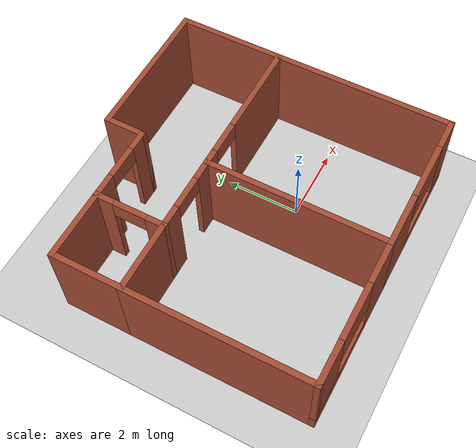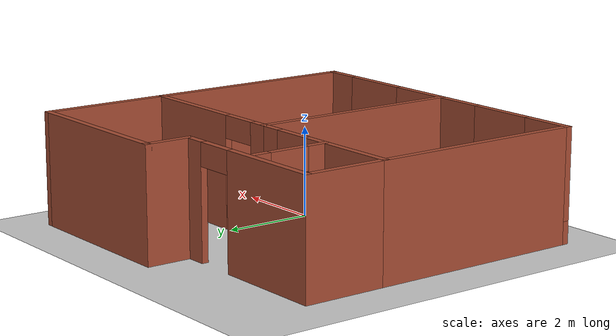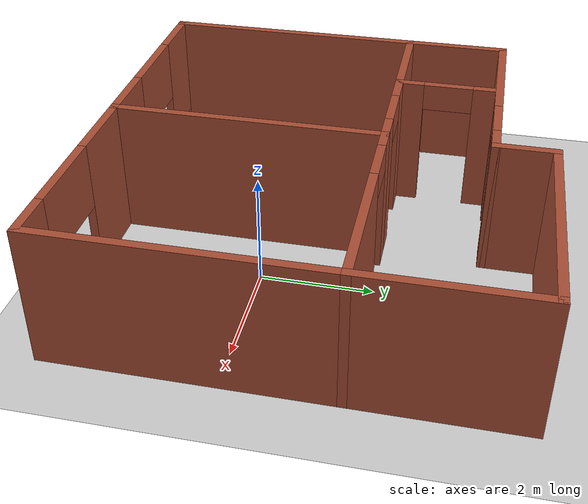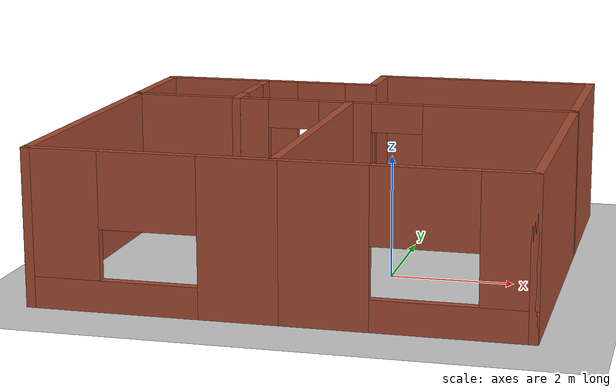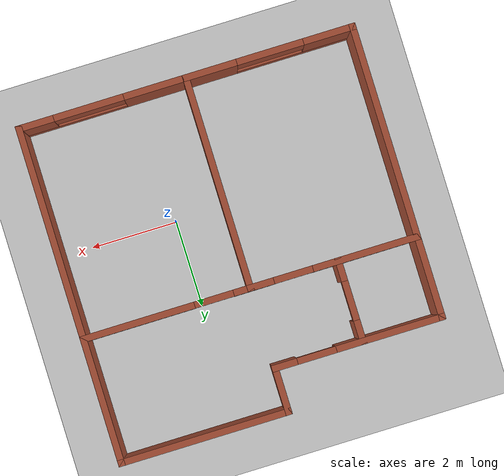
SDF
<sdf version="1.6">
 <world name="default">
  <model name="ground_plane">
   <static>1</static>
   <link name="link">
    <collision name="collision">
     <geometry><plane><normal>0 0 1</normal><size>100 100</size></plane></geometry>
     <surface><friction><ode><mu>100</mu><mu2>50</mu2></ode></friction></surface>
    </collision>
    <visual name="visual">
     <cast_shadows>0</cast_shadows>
     <geometry><plane><normal>0 0 1</normal><size>100 100</size></plane></geometry>
     <material>
      <script><uri>file://media/materials/scripts/gazebo.material</uri><name>Gazebo/Grey</name></script>
     </material>
    </visual>
   </link>
  </model>
  <light name="sun" type="directional">
   <pose>0 0 10 0 -0 0</pose>
   <diffuse>0.8 0.8 0.8 1</diffuse>
   <specular>0.2 0.2 0.2 1</specular>
   <attenuation>
    <range>1000</range>
    <constant>0.9</constant>
    <linear>0.01</linear>
    <quadratic>0.001</quadratic>
   </attenuation>
   <direction>-0.5 0.1 -0.9</direction>
  </light>
  <gravity>0 0 -9.8</gravity>
  <magnetic_field>6e-06 2.3e-05 -4.2e-05</magnetic_field>
  <atmosphere type="adiabatic"/>
  <physics name="default_physics" default="0" type="ode">
   <max_step_size>0.001</max_step_size>
   <real_time_factor>1</real_time_factor>
   <real_time_update_rate>1000</real_time_update_rate>
  </physics>
  <scene><ambient>0.4 0.4 0.4 1</ambient><background>0.7 0.7 0.7 1</background><shadows>1</shadows></scene>
  <spherical_coordinates>
   <surface_model>EARTH_WGS84</surface_model>
   <latitude_deg>0</latitude_deg>
   <longitude_deg>0</longitude_deg>
   <elevation>0</elevation>
   <heading_deg>0</heading_deg>
  </spherical_coordinates>
  <model name="apartment">
   <link name="Wall_12">
    <pose>3.85 2.425 0 0 0 -1.5708</pose>
    <visual name="Wall_12_Visual">
     <pose>0 0 1.25 0 -0 0</pose>
     <geometry><box><size>3 0.15 2.5</size></box></geometry>
     <material>
      <script><uri>file://media/materials/scripts/gazebo.material</uri><name>Gazebo/Bricks</name></script>
      <ambient>1 1 1 1</ambient>
      <shader type="pixel"/>
      <diffuse>1 1 1 1</diffuse>
      <specular>0.2 0.2 0.2 1</specular>
      <emissive>0 0 0 1</emissive>
     </material>
     <meta><layer>0</layer></meta>
    </visual>
    <collision name="Wall_12_Collision">
     <pose>0 0 1.25 0 -0 0</pose>
     <geometry><box><size>3 0.15 2.5</size></box></geometry>
     <surface>
      <friction>
       <ode><mu>1</mu><mu2>1</mu2><fdir1>0 0 0</fdir1><slip1>0</slip1><slip2>0</slip2></ode>
       <torsional>
        <coefficient>1</coefficient>
        <patch_radius>0</patch_radius>
        <surface_radius>0</surface_radius>
        <use_patch_radius>1</use_patch_radius>
        <ode><slip>0</slip></ode>
       </torsional>
      </friction>
      <bounce><restitution_coefficient>0</restitution_coefficient><threshold>1e+06</threshold></bounce>
      <contact>
       <collide_without_contact>0</collide_without_contact>
       <collide_without_contact_bitmask>1</collide_without_contact_bitmask>
       <collide_bitmask>1</collide_bitmask>
       <ode>
        <soft_cfm>0</soft_cfm>
        <soft_erp>0.2</soft_erp>
        <kp>1e+13</kp>
        <kd>1</kd>
        <max_vel>0.01</max_vel>
        <min_depth>0</min_depth>
       </ode>
       <bullet>
        <split_impulse>1</split_impulse>
        <split_impulse_penetration_threshold>-0.01</split_impulse_penetration_threshold>
        <soft_cfm>0</soft_cfm>
        <soft_erp>0.2</soft_erp>
        <kp>1e+13</kp>
        <kd>1</kd>
       </bullet>
      </contact>
     </surface>
    </collision>
   </link>
   <link name="Wall_14">
    <pose>1.925 1 0 0 -0 3.14159</pose>
    <visual name="Wall_14_Visual_0">
     <pose>-0.681236 0 1.25 0 -0 0</pose>
     <geometry><box><size>2.63753 0.15 2.5</size></box></geometry>
     <material>
      <script><uri>file://media/materials/scripts/gazebo.material</uri><name>Gazebo/Bricks</name></script>
      <ambient>0.760784 0.662745 0.627451 1</ambient>
      <shader type="pixel"/>
      <diffuse>1 1 1 1</diffuse>
      <specular>0.2 0.2 0.2 1</specular>
      <emissive>0 0 0 1</emissive>
     </material>
     <meta><layer>0</layer></meta>
    </visual>
    <visual name="Wall_14_Visual_1">
     <pose>1.76876 0 1.25 0 -0 0</pose>
     <geometry><box><size>0.462473 0.15 2.5</size></box></geometry>
     <material>
      <script><uri>file://media/materials/scripts/gazebo.material</uri><name>Gazebo/Bricks</name></script>
      <ambient>0.760784 0.662745 0.627451 1</ambient>
      <shader type="pixel"/>
      <diffuse>1 1 1 1</diffuse>
      <specular>0.2 0.2 0.2 1</specular>
      <emissive>0 0 0 1</emissive>
     </material>
     <meta><layer>0</layer></meta>
    </visual>
    <visual name="Wall_14_Visual_2">
     <pose>1.08753 0 2.25 0 -0 0</pose>
     <geometry><box><size>0.9 0.15 0.5</size></box></geometry>
     <material>
      <script><uri>file://media/materials/scripts/gazebo.material</uri><name>Gazebo/Bricks</name></script>
      <ambient>0.760784 0.662745 0.627451 1</ambient>
      <shader type="pixel"/>
      <diffuse>1 1 1 1</diffuse>
      <specular>0.2 0.2 0.2 1</specular>
      <emissive>0 0 0 1</emissive>
     </material>
     <meta><layer>0</layer></meta>
    </visual>
    <collision name="Wall_14_Collision_0">
     <pose>-0.681236 0 1.25 0 -0 0</pose>
     <geometry><box><size>2.63753 0.15 2.5</size></box></geometry>
     <surface>
      <friction>
       <ode><mu>1</mu><mu2>1</mu2><fdir1>0 0 0</fdir1><slip1>0</slip1><slip2>0</slip2></ode>
       <torsional>
        <coefficient>1</coefficient>
        <patch_radius>0</patch_radius>
        <surface_radius>0</surface_radius>
        <use_patch_radius>1</use_patch_radius>
        <ode><slip>0</slip></ode>
       </torsional>
      </friction>
      <bounce><restitution_coefficient>0</restitution_coefficient><threshold>1e+06</threshold></bounce>
      <contact>
       <collide_without_contact>0</collide_without_contact>
       <collide_without_contact_bitmask>1</collide_without_contact_bitmask>
       <collide_bitmask>1</collide_bitmask>
       <ode>
        <soft_cfm>0</soft_cfm>
        <soft_erp>0.2</soft_erp>
        <kp>1e+13</kp>
        <kd>1</kd>
        <max_vel>0.01</max_vel>
        <min_depth>0</min_depth>
       </ode>
       <bullet>
        <split_impulse>1</split_impulse>
        <split_impulse_penetration_threshold>-0.01</split_impulse_penetration_threshold>
        <soft_cfm>0</soft_cfm>
        <soft_erp>0.2</soft_erp>
        <kp>1e+13</kp>
        <kd>1</kd>
       </bullet>
      </contact>
     </surface>
    </collision>
    <collision name="Wall_14_Collision_1">
     <pose>1.76876 0 1.25 0 -0 0</pose>
     <geometry><box><size>0.462473 0.15 2.5</size></box></geometry>
     <surface>
      <friction>
       <ode><mu>1</mu><mu2>1</mu2><fdir1>0 0 0</fdir1><slip1>0</slip1><slip2>0</slip2></ode>
       <torsional>
        <coefficient>1</coefficient>
        <patch_radius>0</patch_radius>
        <surface_radius>0</surface_radius>
        <use_patch_radius>1</use_patch_radius>
        <ode><slip>0</slip></ode>
       </torsional>
      </friction>
      <bounce><restitution_coefficient>0</restitution_coefficient><threshold>1e+06</threshold></bounce>
      <contact>
       <collide_without_contact>0</collide_without_contact>
       <collide_without_contact_bitmask>1</collide_without_contact_bitmask>
       <collide_bitmask>1</collide_bitmask>
       <ode>
        <soft_cfm>0</soft_cfm>
        <soft_erp>0.2</soft_erp>
        <kp>1e+13</kp>
        <kd>1</kd>
        <max_vel>0.01</max_vel>
        <min_depth>0</min_depth>
       </ode>
       <bullet>
        <split_impulse>1</split_impulse>
        <split_impulse_penetration_threshold>-0.01</split_impulse_penetration_threshold>
        <soft_cfm>0</soft_cfm>
        <soft_erp>0.2</soft_erp>
        <kp>1e+13</kp>
        <kd>1</kd>
       </bullet>
      </contact>
     </surface>
    </collision>
    <collision name="Wall_14_Collision_2">
     <pose>1.08753 0 2.25 0 -0 0</pose>
     <geometry><box><size>0.9 0.15 0.5</size></box></geometry>
     <surface>
      <friction>
       <ode><mu>1</mu><mu2>1</mu2><fdir1>0 0 0</fdir1><slip1>0</slip1><slip2>0</slip2></ode>
       <torsional>
        <coefficient>1</coefficient>
        <patch_radius>0</patch_radius>
        <surface_radius>0</surface_radius>
        <use_patch_radius>1</use_patch_radius>
        <ode><slip>0</slip></ode>
       </torsional>
      </friction>
      <bounce><restitution_coefficient>0</restitution_coefficient><threshold>1e+06</threshold></bounce>
      <contact>
       <collide_without_contact>0</collide_without_contact>
       <collide_without_contact_bitmask>1</collide_without_contact_bitmask>
       <collide_bitmask>1</collide_bitmask>
       <ode>
        <soft_cfm>0</soft_cfm>
        <soft_erp>0.2</soft_erp>
        <kp>1e+13</kp>
        <kd>1</kd>
        <max_vel>0.01</max_vel>
        <min_depth>0</min_depth>
       </ode>
       <bullet>
        <split_impulse>1</split_impulse>
        <split_impulse_penetration_threshold>-0.01</split_impulse_penetration_threshold>
        <soft_cfm>0</soft_cfm>
        <soft_erp>0.2</soft_erp>
        <kp>1e+13</kp>
        <kd>1</kd>
       </bullet>
      </contact>
     </surface>
    </collision>
   </link>
   <link name="Wall_18">
    <pose>0 -1.425 0 0 0 -1.5708</pose>
    <visual name="Wall_18_Visual">
     <pose>0 0 1.25 0 -0 0</pose>
     <geometry><box><size>5 0.15 2.5</size></box></geometry>
     <material>
      <script><uri>file://media/materials/scripts/gazebo.material</uri><name>Gazebo/Bricks</name></script>
      <ambient>1 1 1 1</ambient>
      <shader type="pixel"/>
      <diffuse>1 1 1 1</diffuse>
      <specular>0.2 0.2 0.2 1</specular>
      <emissive>0 0 0 1</emissive>
     </material>
     <meta><layer>0</layer></meta>
    </visual>
    <collision name="Wall_18_Collision">
     <pose>0 0 1.25 0 -0 0</pose>
     <geometry><box><size>5 0.15 2.5</size></box></geometry>
     <surface>
      <friction>
       <ode><mu>1</mu><mu2>1</mu2><fdir1>0 0 0</fdir1><slip1>0</slip1><slip2>0</slip2></ode>
       <torsional>
        <coefficient>1</coefficient>
        <patch_radius>0</patch_radius>
        <surface_radius>0</surface_radius>
        <use_patch_radius>1</use_patch_radius>
        <ode><slip>0</slip></ode>
       </torsional>
      </friction>
      <bounce><restitution_coefficient>0</restitution_coefficient><threshold>1e+06</threshold></bounce>
      <contact>
       <collide_without_contact>0</collide_without_contact>
       <collide_without_contact_bitmask>1</collide_without_contact_bitmask>
       <collide_bitmask>1</collide_bitmask>
       <ode>
        <soft_cfm>0</soft_cfm>
        <soft_erp>0.2</soft_erp>
        <kp>1e+13</kp>
        <kd>1</kd>
        <max_vel>0.01</max_vel>
        <min_depth>0</min_depth>
       </ode>
       <bullet>
        <split_impulse>1</split_impulse>
        <split_impulse_penetration_threshold>-0.01</split_impulse_penetration_threshold>
        <soft_cfm>0</soft_cfm>
        <soft_erp>0.2</soft_erp>
        <kp>1e+13</kp>
        <kd>1</kd>
       </bullet>
      </contact>
     </surface>
    </collision>
   </link>
   <link name="Wall_19">
    <pose>1.925 -3.85 0 0 -0 0</pose>
    <visual name="Wall_19_Visual_0">
     <pose>-1.24293 0 1.25 0 -0 0</pose>
     <geometry><box><size>1.51415 0.15 2.5</size></box></geometry>
     <material>
      <script><uri>file://media/materials/scripts/gazebo.material</uri><name>Gazebo/Bricks</name></script>
      <ambient>1 1 1 1</ambient>
      <shader type="pixel"/>
      <diffuse>1 1 1 1</diffuse>
      <specular>0.2 0.2 0.2 1</specular>
      <emissive>0 0 0 1</emissive>
     </material>
     <meta><layer>0</layer></meta>
    </visual>
    <visual name="Wall_19_Visual_1">
     <pose>0.757074 0 0.25 0 -0 0</pose>
     <geometry><box><size>2.48585 0.15 0.5</size></box></geometry>
     <material>
      <script><uri>file://media/materials/scripts/gazebo.material</uri><name>Gazebo/Bricks</name></script>
      <ambient>1 1 1 1</ambient>
      <shader type="pixel"/>
      <diffuse>1 1 1 1</diffuse>
      <specular>0.2 0.2 0.2 1</specular>
      <emissive>0 0 0 1</emissive>
     </material>
     <meta><layer>0</layer></meta>
    </visual>
    <visual name="Wall_19_Visual_2">
     <pose>1.56451 0 1.5 0 -0 0</pose>
     <geometry><box><size>0.870975 0.15 2</size></box></geometry>
     <material>
      <script><uri>file://media/materials/scripts/gazebo.material</uri><name>Gazebo/Bricks</name></script>
      <ambient>1 1 1 1</ambient>
      <shader type="pixel"/>
      <diffuse>1 1 1 1</diffuse>
      <specular>0.2 0.2 0.2 1</specular>
      <emissive>0 0 0 1</emissive>
     </material>
     <meta><layer>0</layer></meta>
    </visual>
    <visual name="Wall_19_Visual_3">
     <pose>0.321587 0 1.9 0 -0 0</pose>
     <geometry><box><size>1.61488 0.15 1.2</size></box></geometry>
     <material>
      <script><uri>file://media/materials/scripts/gazebo.material</uri><name>Gazebo/Bricks</name></script>
      <ambient>1 1 1 1</ambient>
      <shader type="pixel"/>
      <diffuse>1 1 1 1</diffuse>
      <specular>0.2 0.2 0.2 1</specular>
      <emissive>0 0 0 1</emissive>
     </material>
     <meta><layer>0</layer></meta>
    </visual>
    <collision name="Wall_19_Collision_0">
     <pose>-1.24293 0 1.25 0 -0 0</pose>
     <geometry><box><size>1.51415 0.15 2.5</size></box></geometry>
     <surface>
      <friction>
       <ode><mu>1</mu><mu2>1</mu2><fdir1>0 0 0</fdir1><slip1>0</slip1><slip2>0</slip2></ode>
       <torsional>
        <coefficient>1</coefficient>
        <patch_radius>0</patch_radius>
        <surface_radius>0</surface_radius>
        <use_patch_radius>1</use_patch_radius>
        <ode><slip>0</slip></ode>
       </torsional>
      </friction>
      <bounce><restitution_coefficient>0</restitution_coefficient><threshold>1e+06</threshold></bounce>
      <contact>
       <collide_without_contact>0</collide_without_contact>
       <collide_without_contact_bitmask>1</collide_without_contact_bitmask>
       <collide_bitmask>1</collide_bitmask>
       <ode>
        <soft_cfm>0</soft_cfm>
        <soft_erp>0.2</soft_erp>
        <kp>1e+13</kp>
        <kd>1</kd>
        <max_vel>0.01</max_vel>
        <min_depth>0</min_depth>
       </ode>
       <bullet>
        <split_impulse>1</split_impulse>
        <split_impulse_penetration_threshold>-0.01</split_impulse_penetration_threshold>
        <soft_cfm>0</soft_cfm>
        <soft_erp>0.2</soft_erp>
        <kp>1e+13</kp>
        <kd>1</kd>
       </bullet>
      </contact>
     </surface>
    </collision>
    <collision name="Wall_19_Collision_2">
     <pose>1.56451 0 1.5 0 -0 0</pose>
     <geometry><box><size>0.870975 0.15 2</size></box></geometry>
     <surface>
      <friction>
       <ode><mu>1</mu><mu2>1</mu2><fdir1>0 0 0</fdir1><slip1>0</slip1><slip2>0</slip2></ode>
       <torsional>
        <coefficient>1</coefficient>
        <patch_radius>0</patch_radius>
        <surface_radius>0</surface_radius>
        <use_patch_radius>1</use_patch_radius>
        <ode><slip>0</slip></ode>
       </torsional>
      </friction>
      <bounce><restitution_coefficient>0</restitution_coefficient><threshold>1e+06</threshold></bounce>
      <contact>
       <collide_without_contact>0</collide_without_contact>
       <collide_without_contact_bitmask>1</collide_without_contact_bitmask>
       <collide_bitmask>1</collide_bitmask>
       <ode>
        <soft_cfm>0</soft_cfm>
        <soft_erp>0.2</soft_erp>
        <kp>1e+13</kp>
        <kd>1</kd>
        <max_vel>0.01</max_vel>
        <min_depth>0</min_depth>
       </ode>
       <bullet>
        <split_impulse>1</split_impulse>
        <split_impulse_penetration_threshold>-0.01</split_impulse_penetration_threshold>
        <soft_cfm>0</soft_cfm>
        <soft_erp>0.2</soft_erp>
        <kp>1e+13</kp>
        <kd>1</kd>
       </bullet>
      </contact>
     </surface>
    </collision>
    <collision name="Wall_19_Collision_1">
     <pose>0.757074 0 0.25 0 -0 0</pose>
     <geometry><box><size>2.48585 0.15 0.5</size></box></geometry>
     <surface>
      <friction>
       <ode><mu>1</mu><mu2>1</mu2><fdir1>0 0 0</fdir1><slip1>0</slip1><slip2>0</slip2></ode>
       <torsional>
        <coefficient>1</coefficient>
        <patch_radius>0</patch_radius>
        <surface_radius>0</surface_radius>
        <use_patch_radius>1</use_patch_radius>
        <ode><slip>0</slip></ode>
       </torsional>
      </friction>
      <bounce><restitution_coefficient>0</restitution_coefficient><threshold>1e+06</threshold></bounce>
      <contact>
       <collide_without_contact>0</collide_without_contact>
       <collide_without_contact_bitmask>1</collide_without_contact_bitmask>
       <collide_bitmask>1</collide_bitmask>
       <ode>
        <soft_cfm>0</soft_cfm>
        <soft_erp>0.2</soft_erp>
        <kp>1e+13</kp>
        <kd>1</kd>
        <max_vel>0.01</max_vel>
        <min_depth>0</min_depth>
       </ode>
       <bullet>
        <split_impulse>1</split_impulse>
        <split_impulse_penetration_threshold>-0.01</split_impulse_penetration_threshold>
        <soft_cfm>0</soft_cfm>
        <soft_erp>0.2</soft_erp>
        <kp>1e+13</kp>
        <kd>1</kd>
       </bullet>
      </contact>
     </surface>
    </collision>
    <collision name="Wall_19_Collision_3">
     <pose>0.321587 0 1.9 0 -0 0</pose>
     <geometry><box><size>1.61488 0.15 1.2</size></box></geometry>
     <surface>
      <friction>
       <ode><mu>1</mu><mu2>1</mu2><fdir1>0 0 0</fdir1><slip1>0</slip1><slip2>0</slip2></ode>
       <torsional>
        <coefficient>1</coefficient>
        <patch_radius>0</patch_radius>
        <surface_radius>0</surface_radius>
        <use_patch_radius>1</use_patch_radius>
        <ode><slip>0</slip></ode>
       </torsional>
      </friction>
      <bounce><restitution_coefficient>0</restitution_coefficient><threshold>1e+06</threshold></bounce>
      <contact>
       <collide_without_contact>0</collide_without_contact>
       <collide_without_contact_bitmask>1</collide_without_contact_bitmask>
       <collide_bitmask>1</collide_bitmask>
       <ode>
        <soft_cfm>0</soft_cfm>
        <soft_erp>0.2</soft_erp>
        <kp>1e+13</kp>
        <kd>1</kd>
        <max_vel>0.01</max_vel>
        <min_depth>0</min_depth>
       </ode>
       <bullet>
        <split_impulse>1</split_impulse>
        <split_impulse_penetration_threshold>-0.01</split_impulse_penetration_threshold>
        <soft_cfm>0</soft_cfm>
        <soft_erp>0.2</soft_erp>
        <kp>1e+13</kp>
        <kd>1</kd>
       </bullet>
      </contact>
     </surface>
    </collision>
   </link>
   <link name="Wall_20">
    <pose>3.85 -1.425 0 0 -0 1.5708</pose>
    <visual name="Wall_20_Visual">
     <pose>0 0 1.25 0 -0 0</pose>
     <geometry><box><size>5 0.15 2.5</size></box></geometry>
     <material>
      <script><uri>file://media/materials/scripts/gazebo.material</uri><name>Gazebo/Bricks</name></script>
      <ambient>1 1 1 1</ambient>
      <shader type="pixel"/>
      <diffuse>1 1 1 1</diffuse>
      <specular>0.2 0.2 0.2 1</specular>
      <emissive>0 0 0 1</emissive>
     </material>
     <meta><layer>0</layer></meta>
    </visual>
    <collision name="Wall_20_Collision">
     <pose>0 0 1.25 0 -0 0</pose>
     <geometry><box><size>5 0.15 2.5</size></box></geometry>
     <surface>
      <friction>
       <ode><mu>1</mu><mu2>1</mu2><fdir1>0 0 0</fdir1><slip1>0</slip1><slip2>0</slip2></ode>
       <torsional>
        <coefficient>1</coefficient>
        <patch_radius>0</patch_radius>
        <surface_radius>0</surface_radius>
        <use_patch_radius>1</use_patch_radius>
        <ode><slip>0</slip></ode>
       </torsional>
      </friction>
      <bounce><restitution_coefficient>0</restitution_coefficient><threshold>1e+06</threshold></bounce>
      <contact>
       <collide_without_contact>0</collide_without_contact>
       <collide_without_contact_bitmask>1</collide_without_contact_bitmask>
       <collide_bitmask>1</collide_bitmask>
       <ode>
        <soft_cfm>0</soft_cfm>
        <soft_erp>0.2</soft_erp>
        <kp>1e+13</kp>
        <kd>1</kd>
        <max_vel>0.01</max_vel>
        <min_depth>0</min_depth>
       </ode>
       <bullet>
        <split_impulse>1</split_impulse>
        <split_impulse_penetration_threshold>-0.01</split_impulse_penetration_threshold>
        <soft_cfm>0</soft_cfm>
        <soft_erp>0.2</soft_erp>
        <kp>1e+13</kp>
        <kd>1</kd>
       </bullet>
      </contact>
     </surface>
    </collision>
   </link>
   <link name="Wall_22">
    <pose>-1.925 -3.85 0 0 -0 3.14159</pose>
    <visual name="Wall_22_Visual_0">
     <pose>-1.3771 0 1.25 0 -0 0</pose>
     <geometry><box><size>1.2458 0.15 2.5</size></box></geometry>
     <material>
      <script><uri>file://media/materials/scripts/gazebo.material</uri><name>Gazebo/Bricks</name></script>
      <ambient>1 1 1 1</ambient>
      <shader type="pixel"/>
      <diffuse>1 1 1 1</diffuse>
      <specular>0.2 0.2 0.2 1</specular>
      <emissive>0 0 0 1</emissive>
     </material>
     <meta><layer>0</layer></meta>
    </visual>
    <visual name="Wall_22_Visual_1">
     <pose>0.622901 0 0.25 0 -0 0</pose>
     <geometry><box><size>2.7542 0.15 0.5</size></box></geometry>
     <material>
      <script><uri>file://media/materials/scripts/gazebo.material</uri><name>Gazebo/Bricks</name></script>
      <ambient>1 1 1 1</ambient>
      <shader type="pixel"/>
      <diffuse>1 1 1 1</diffuse>
      <specular>0.2 0.2 0.2 1</specular>
      <emissive>0 0 0 1</emissive>
     </material>
     <meta><layer>0</layer></meta>
    </visual>
    <visual name="Wall_22_Visual_2">
     <pose>1.39273 0 1.5 0 -0 0</pose>
     <geometry><box><size>1.21454 0.15 2</size></box></geometry>
     <material>
      <script><uri>file://media/materials/scripts/gazebo.material</uri><name>Gazebo/Bricks</name></script>
      <ambient>1 1 1 1</ambient>
      <shader type="pixel"/>
      <diffuse>1 1 1 1</diffuse>
      <specular>0.2 0.2 0.2 1</specular>
      <emissive>0 0 0 1</emissive>
     </material>
     <meta><layer>0</layer></meta>
    </visual>
    <visual name="Wall_22_Visual_3">
     <pose>0.01563 0 1.9 0 -0 0</pose>
     <geometry><box><size>1.53966 0.15 1.2</size></box></geometry>
     <material>
      <script><uri>file://media/materials/scripts/gazebo.material</uri><name>Gazebo/Bricks</name></script>
      <ambient>1 1 1 1</ambient>
      <shader type="pixel"/>
      <diffuse>1 1 1 1</diffuse>
      <specular>0.2 0.2 0.2 1</specular>
      <emissive>0 0 0 1</emissive>
     </material>
     <meta><layer>0</layer></meta>
    </visual>
    <collision name="Wall_22_Collision_0">
     <pose>-1.3771 0 1.25 0 -0 0</pose>
     <geometry><box><size>1.2458 0.15 2.5</size></box></geometry>
     <surface>
      <friction>
       <ode><mu>1</mu><mu2>1</mu2><fdir1>0 0 0</fdir1><slip1>0</slip1><slip2>0</slip2></ode>
       <torsional>
        <coefficient>1</coefficient>
        <patch_radius>0</patch_radius>
        <surface_radius>0</surface_radius>
        <use_patch_radius>1</use_patch_radius>
        <ode><slip>0</slip></ode>
       </torsional>
      </friction>
      <bounce><restitution_coefficient>0</restitution_coefficient><threshold>1e+06</threshold></bounce>
      <contact>
       <collide_without_contact>0</collide_without_contact>
       <collide_without_contact_bitmask>1</collide_without_contact_bitmask>
       <collide_bitmask>1</collide_bitmask>
       <ode>
        <soft_cfm>0</soft_cfm>
        <soft_erp>0.2</soft_erp>
        <kp>1e+13</kp>
        <kd>1</kd>
        <max_vel>0.01</max_vel>
        <min_depth>0</min_depth>
       </ode>
       <bullet>
        <split_impulse>1</split_impulse>
        <split_impulse_penetration_threshold>-0.01</split_impulse_penetration_threshold>
        <soft_cfm>0</soft_cfm>
        <soft_erp>0.2</soft_erp>
        <kp>1e+13</kp>
        <kd>1</kd>
       </bullet>
      </contact>
     </surface>
    </collision>
    <collision name="Wall_22_Collision_2">
     <pose>1.39273 0 1.5 0 -0 0</pose>
     <geometry><box><size>1.21454 0.15 2</size></box></geometry>
     <surface>
      <friction>
       <ode><mu>1</mu><mu2>1</mu2><fdir1>0 0 0</fdir1><slip1>0</slip1><slip2>0</slip2></ode>
       <torsional>
        <coefficient>1</coefficient>
        <patch_radius>0</patch_radius>
        <surface_radius>0</surface_radius>
        <use_patch_radius>1</use_patch_radius>
        <ode><slip>0</slip></ode>
       </torsional>
      </friction>
      <bounce><restitution_coefficient>0</restitution_coefficient><threshold>1e+06</threshold></bounce>
      <contact>
       <collide_without_contact>0</collide_without_contact>
       <collide_without_contact_bitmask>1</collide_without_contact_bitmask>
       <collide_bitmask>1</collide_bitmask>
       <ode>
        <soft_cfm>0</soft_cfm>
        <soft_erp>0.2</soft_erp>
        <kp>1e+13</kp>
        <kd>1</kd>
        <max_vel>0.01</max_vel>
        <min_depth>0</min_depth>
       </ode>
       <bullet>
        <split_impulse>1</split_impulse>
        <split_impulse_penetration_threshold>-0.01</split_impulse_penetration_threshold>
        <soft_cfm>0</soft_cfm>
        <soft_erp>0.2</soft_erp>
        <kp>1e+13</kp>
        <kd>1</kd>
       </bullet>
      </contact>
     </surface>
    </collision>
    <collision name="Wall_22_Collision_1">
     <pose>0.622901 0 0.25 0 -0 0</pose>
     <geometry><box><size>2.7542 0.15 0.5</size></box></geometry>
     <surface>
      <friction>
       <ode><mu>1</mu><mu2>1</mu2><fdir1>0 0 0</fdir1><slip1>0</slip1><slip2>0</slip2></ode>
       <torsional>
        <coefficient>1</coefficient>
        <patch_radius>0</patch_radius>
        <surface_radius>0</surface_radius>
        <use_patch_radius>1</use_patch_radius>
        <ode><slip>0</slip></ode>
       </torsional>
      </friction>
      <bounce><restitution_coefficient>0</restitution_coefficient><threshold>1e+06</threshold></bounce>
      <contact>
       <collide_without_contact>0</collide_without_contact>
       <collide_without_contact_bitmask>1</collide_without_contact_bitmask>
       <collide_bitmask>1</collide_bitmask>
       <ode>
        <soft_cfm>0</soft_cfm>
        <soft_erp>0.2</soft_erp>
        <kp>1e+13</kp>
        <kd>1</kd>
        <max_vel>0.01</max_vel>
        <min_depth>0</min_depth>
       </ode>
       <bullet>
        <split_impulse>1</split_impulse>
        <split_impulse_penetration_threshold>-0.01</split_impulse_penetration_threshold>
        <soft_cfm>0</soft_cfm>
        <soft_erp>0.2</soft_erp>
        <kp>1e+13</kp>
        <kd>1</kd>
       </bullet>
      </contact>
     </surface>
    </collision>
    <collision name="Wall_22_Collision_3">
     <pose>0.01563 0 1.9 0 -0 0</pose>
     <geometry><box><size>1.53966 0.15 1.2</size></box></geometry>
     <surface>
      <friction>
       <ode><mu>1</mu><mu2>1</mu2><fdir1>0 0 0</fdir1><slip1>0</slip1><slip2>0</slip2></ode>
       <torsional>
        <coefficient>1</coefficient>
        <patch_radius>0</patch_radius>
        <surface_radius>0</surface_radius>
        <use_patch_radius>1</use_patch_radius>
        <ode><slip>0</slip></ode>
       </torsional>
      </friction>
      <bounce><restitution_coefficient>0</restitution_coefficient><threshold>1e+06</threshold></bounce>
      <contact>
       <collide_without_contact>0</collide_without_contact>
       <collide_without_contact_bitmask>1</collide_without_contact_bitmask>
       <collide_bitmask>1</collide_bitmask>
       <ode>
        <soft_cfm>0</soft_cfm>
        <soft_erp>0.2</soft_erp>
        <kp>1e+13</kp>
        <kd>1</kd>
        <max_vel>0.01</max_vel>
        <min_depth>0</min_depth>
       </ode>
       <bullet>
        <split_impulse>1</split_impulse>
        <split_impulse_penetration_threshold>-0.01</split_impulse_penetration_threshold>
        <soft_cfm>0</soft_cfm>
        <soft_erp>0.2</soft_erp>
        <kp>1e+13</kp>
        <kd>1</kd>
       </bullet>
      </contact>
     </surface>
    </collision>
   </link>
   <link name="Wall_23">
    <pose>-3.85 -1.425 0 0 -0 1.5708</pose>
    <visual name="Wall_23_Visual">
     <pose>0 0 1.25 0 -0 0</pose>
     <geometry><box><size>5 0.15 2.5</size></box></geometry>
     <material>
      <script><uri>file://media/materials/scripts/gazebo.material</uri><name>Gazebo/Bricks</name></script>
      <ambient>1 1 1 1</ambient>
      <shader type="pixel"/>
      <diffuse>1 1 1 1</diffuse>
      <specular>0.2 0.2 0.2 1</specular>
      <emissive>0 0 0 1</emissive>
     </material>
     <meta><layer>0</layer></meta>
    </visual>
    <collision name="Wall_23_Collision">
     <pose>0 0 1.25 0 -0 0</pose>
     <geometry><box><size>5 0.15 2.5</size></box></geometry>
     <surface>
      <friction>
       <ode><mu>1</mu><mu2>1</mu2><fdir1>0 0 0</fdir1><slip1>0</slip1><slip2>0</slip2></ode>
       <torsional>
        <coefficient>1</coefficient>
        <patch_radius>0</patch_radius>
        <surface_radius>0</surface_radius>
        <use_patch_radius>1</use_patch_radius>
        <ode><slip>0</slip></ode>
       </torsional>
      </friction>
      <bounce><restitution_coefficient>0</restitution_coefficient><threshold>1e+06</threshold></bounce>
      <contact>
       <collide_without_contact>0</collide_without_contact>
       <collide_without_contact_bitmask>1</collide_without_contact_bitmask>
       <collide_bitmask>1</collide_bitmask>
       <ode>
        <soft_cfm>0</soft_cfm>
        <soft_erp>0.2</soft_erp>
        <kp>1e+13</kp>
        <kd>1</kd>
        <max_vel>0.01</max_vel>
        <min_depth>0</min_depth>
       </ode>
       <bullet>
        <split_impulse>1</split_impulse>
        <split_impulse_penetration_threshold>-0.01</split_impulse_penetration_threshold>
        <soft_cfm>0</soft_cfm>
        <soft_erp>0.2</soft_erp>
        <kp>1e+13</kp>
        <kd>1</kd>
       </bullet>
      </contact>
     </surface>
    </collision>
   </link>
   <link name="Wall_24">
    <pose>-1.925 1 0 0 -0 0</pose>
    <visual name="Wall_24_Visual_0">
     <pose>-0.758531 0 1.25 0 -0 0</pose>
     <geometry><box><size>2.48294 0.15 2.5</size></box></geometry>
     <material>
      <script><uri>file://media/materials/scripts/gazebo.material</uri><name>Gazebo/Bricks</name></script>
      <ambient>1 1 1 1</ambient>
      <shader type="pixel"/>
      <diffuse>1 1 1 1</diffuse>
      <specular>0.2 0.2 0.2 1</specular>
      <emissive>0 0 0 1</emissive>
     </material>
     <meta><layer>0</layer></meta>
    </visual>
    <visual name="Wall_24_Visual_1">
     <pose>1.69147 0 1.25 0 -0 0</pose>
     <geometry><box><size>0.617061 0.15 2.5</size></box></geometry>
     <material>
      <script><uri>file://media/materials/scripts/gazebo.material</uri><name>Gazebo/Bricks</name></script>
      <ambient>1 1 1 1</ambient>
      <shader type="pixel"/>
      <diffuse>1 1 1 1</diffuse>
      <specular>0.2 0.2 0.2 1</specular>
      <emissive>0 0 0 1</emissive>
     </material>
     <meta><layer>0</layer></meta>
    </visual>
    <visual name="Wall_24_Visual_2">
     <pose>0.932939 0 2.25 0 -0 0</pose>
     <geometry><box><size>0.9 0.15 0.5</size></box></geometry>
     <material>
      <script><uri>file://media/materials/scripts/gazebo.material</uri><name>Gazebo/Bricks</name></script>
      <ambient>1 1 1 1</ambient>
      <shader type="pixel"/>
      <diffuse>1 1 1 1</diffuse>
      <specular>0.2 0.2 0.2 1</specular>
      <emissive>0 0 0 1</emissive>
     </material>
     <meta><layer>0</layer></meta>
    </visual>
    <collision name="Wall_24_Collision_0">
     <pose>-0.758531 0 1.25 0 -0 0</pose>
     <geometry><box><size>2.48294 0.15 2.5</size></box></geometry>
     <surface>
      <friction>
       <ode><mu>1</mu><mu2>1</mu2><fdir1>0 0 0</fdir1><slip1>0</slip1><slip2>0</slip2></ode>
       <torsional>
        <coefficient>1</coefficient>
        <patch_radius>0</patch_radius>
        <surface_radius>0</surface_radius>
        <use_patch_radius>1</use_patch_radius>
        <ode><slip>0</slip></ode>
       </torsional>
      </friction>
      <bounce><restitution_coefficient>0</restitution_coefficient><threshold>1e+06</threshold></bounce>
      <contact>
       <collide_without_contact>0</collide_without_contact>
       <collide_without_contact_bitmask>1</collide_without_contact_bitmask>
       <collide_bitmask>1</collide_bitmask>
       <ode>
        <soft_cfm>0</soft_cfm>
        <soft_erp>0.2</soft_erp>
        <kp>1e+13</kp>
        <kd>1</kd>
        <max_vel>0.01</max_vel>
        <min_depth>0</min_depth>
       </ode>
       <bullet>
        <split_impulse>1</split_impulse>
        <split_impulse_penetration_threshold>-0.01</split_impulse_penetration_threshold>
        <soft_cfm>0</soft_cfm>
        <soft_erp>0.2</soft_erp>
        <kp>1e+13</kp>
        <kd>1</kd>
       </bullet>
      </contact>
     </surface>
    </collision>
    <collision name="Wall_24_Collision_1">
     <pose>1.69147 0 1.25 0 -0 0</pose>
     <geometry><box><size>0.617061 0.15 2.5</size></box></geometry>
     <surface>
      <friction>
       <ode><mu>1</mu><mu2>1</mu2><fdir1>0 0 0</fdir1><slip1>0</slip1><slip2>0</slip2></ode>
       <torsional>
        <coefficient>1</coefficient>
        <patch_radius>0</patch_radius>
        <surface_radius>0</surface_radius>
        <use_patch_radius>1</use_patch_radius>
        <ode><slip>0</slip></ode>
       </torsional>
      </friction>
      <bounce><restitution_coefficient>0</restitution_coefficient><threshold>1e+06</threshold></bounce>
      <contact>
       <collide_without_contact>0</collide_without_contact>
       <collide_without_contact_bitmask>1</collide_without_contact_bitmask>
       <collide_bitmask>1</collide_bitmask>
       <ode>
        <soft_cfm>0</soft_cfm>
        <soft_erp>0.2</soft_erp>
        <kp>1e+13</kp>
        <kd>1</kd>
        <max_vel>0.01</max_vel>
        <min_depth>0</min_depth>
       </ode>
       <bullet>
        <split_impulse>1</split_impulse>
        <split_impulse_penetration_threshold>-0.01</split_impulse_penetration_threshold>
        <soft_cfm>0</soft_cfm>
        <soft_erp>0.2</soft_erp>
        <kp>1e+13</kp>
        <kd>1</kd>
       </bullet>
      </contact>
     </surface>
    </collision>
    <collision name="Wall_24_Collision_2">
     <pose>0.932939 0 2.25 0 -0 0</pose>
     <geometry><box><size>0.9 0.15 0.5</size></box></geometry>
     <surface>
      <friction>
       <ode><mu>1</mu><mu2>1</mu2><fdir1>0 0 0</fdir1><slip1>0</slip1><slip2>0</slip2></ode>
       <torsional>
        <coefficient>1</coefficient>
        <patch_radius>0</patch_radius>
        <surface_radius>0</surface_radius>
        <use_patch_radius>1</use_patch_radius>
        <ode><slip>0</slip></ode>
       </torsional>
      </friction>
      <bounce><restitution_coefficient>0</restitution_coefficient><threshold>1e+06</threshold></bounce>
      <contact>
       <collide_without_contact>0</collide_without_contact>
       <collide_without_contact_bitmask>1</collide_without_contact_bitmask>
       <collide_bitmask>1</collide_bitmask>
       <ode>
        <soft_cfm>0</soft_cfm>
        <soft_erp>0.2</soft_erp>
        <kp>1e+13</kp>
        <kd>1</kd>
        <max_vel>0.01</max_vel>
        <min_depth>0</min_depth>
       </ode>
       <bullet>
        <split_impulse>1</split_impulse>
        <split_impulse_penetration_threshold>-0.01</split_impulse_penetration_threshold>
        <soft_cfm>0</soft_cfm>
        <soft_erp>0.2</soft_erp>
        <kp>1e+13</kp>
        <kd>1</kd>
       </bullet>
      </contact>
     </surface>
    </collision>
   </link>
   <link name="Wall_26">
    <pose>-3.85 1.925 0 0 -0 1.5708</pose>
    <visual name="Wall_26_Visual">
     <pose>0 0 1.25 0 -0 0</pose>
     <geometry><box><size>2 0.15 2.5</size></box></geometry>
     <material>
      <script><uri>file://media/materials/scripts/gazebo.material</uri><name>Gazebo/Bricks</name></script>
      <ambient>1 1 1 1</ambient>
      <shader type="pixel"/>
      <diffuse>1 1 1 1</diffuse>
      <specular>0.2 0.2 0.2 1</specular>
      <emissive>0 0 0 1</emissive>
     </material>
     <meta><layer>0</layer></meta>
    </visual>
    <collision name="Wall_26_Collision">
     <pose>0 0 1.25 0 -0 0</pose>
     <geometry><box><size>2 0.15 2.5</size></box></geometry>
     <surface>
      <friction>
       <ode><mu>1</mu><mu2>1</mu2><fdir1>0 0 0</fdir1><slip1>0</slip1><slip2>0</slip2></ode>
       <torsional>
        <coefficient>1</coefficient>
        <patch_radius>0</patch_radius>
        <surface_radius>0</surface_radius>
        <use_patch_radius>1</use_patch_radius>
        <ode><slip>0</slip></ode>
       </torsional>
      </friction>
      <bounce><restitution_coefficient>0</restitution_coefficient><threshold>1e+06</threshold></bounce>
      <contact>
       <collide_without_contact>0</collide_without_contact>
       <collide_without_contact_bitmask>1</collide_without_contact_bitmask>
       <collide_bitmask>1</collide_bitmask>
       <ode>
        <soft_cfm>0</soft_cfm>
        <soft_erp>0.2</soft_erp>
        <kp>1e+13</kp>
        <kd>1</kd>
        <max_vel>0.01</max_vel>
        <min_depth>0</min_depth>
       </ode>
       <bullet>
        <split_impulse>1</split_impulse>
        <split_impulse_penetration_threshold>-0.01</split_impulse_penetration_threshold>
        <soft_cfm>0</soft_cfm>
        <soft_erp>0.2</soft_erp>
        <kp>1e+13</kp>
        <kd>1</kd>
       </bullet>
      </contact>
     </surface>
    </collision>
   </link>
   <link name="Wall_38">
    <pose>1.925 3.85 0 0 -0 3.14159</pose>
    <visual name="Wall_38_Visual">
     <pose>0 0 1.25 0 -0 0</pose>
     <geometry><box><size>4 0.15 2.5</size></box></geometry>
     <material>
      <script><uri>file://media/materials/scripts/gazebo.material</uri><name>Gazebo/Bricks</name></script>
      <ambient>0.760784 0.662745 0.627451 1</ambient>
      <shader type="pixel"/>
      <diffuse>1 1 1 1</diffuse>
      <specular>0.2 0.2 0.2 1</specular>
      <emissive>0 0 0 1</emissive>
     </material>
     <meta><layer>0</layer></meta>
    </visual>
    <collision name="Wall_38_Collision">
     <pose>0 0 1.25 0 -0 0</pose>
     <geometry><box><size>4 0.15 2.5</size></box></geometry>
     <surface>
      <friction>
       <ode><mu>1</mu><mu2>1</mu2><fdir1>0 0 0</fdir1><slip1>0</slip1><slip2>0</slip2></ode>
       <torsional>
        <coefficient>1</coefficient>
        <patch_radius>0</patch_radius>
        <surface_radius>0</surface_radius>
        <use_patch_radius>1</use_patch_radius>
        <ode><slip>0</slip></ode>
       </torsional>
      </friction>
      <bounce><restitution_coefficient>0</restitution_coefficient><threshold>1e+06</threshold></bounce>
      <contact>
       <collide_without_contact>0</collide_without_contact>
       <collide_without_contact_bitmask>1</collide_without_contact_bitmask>
       <collide_bitmask>1</collide_bitmask>
       <ode>
        <soft_cfm>0</soft_cfm>
        <soft_erp>0.2</soft_erp>
        <kp>1e+13</kp>
        <kd>1</kd>
        <max_vel>0.01</max_vel>
        <min_depth>0</min_depth>
       </ode>
       <bullet>
        <split_impulse>1</split_impulse>
        <split_impulse_penetration_threshold>-0.01</split_impulse_penetration_threshold>
        <soft_cfm>0</soft_cfm>
        <soft_erp>0.2</soft_erp>
        <kp>1e+13</kp>
        <kd>1</kd>
       </bullet>
      </contact>
     </surface>
    </collision>
   </link>
   <link name="Wall_46">
    <pose>-1.925 2.85 0 0 -0 0</pose>
    <visual name="Wall_46_Visual_0">
     <pose>-0.744312 0 1.25 0 -0 0</pose>
     <geometry><box><size>2.51138 0.15 2.5</size></box></geometry>
     <material>
      <script><uri>file://media/materials/scripts/gazebo.material</uri><name>Gazebo/Bricks</name></script>
      <ambient>1 1 1 1</ambient>
      <shader type="pixel"/>
      <diffuse>1 1 1 1</diffuse>
      <specular>0.2 0.2 0.2 1</specular>
      <emissive>0 0 0 1</emissive>
     </material>
     <meta><layer>0</layer></meta>
    </visual>
    <visual name="Wall_46_Visual_1">
     <pose>1.70569 0 1.25 0 -0 0</pose>
     <geometry><box><size>0.588623 0.15 2.5</size></box></geometry>
     <material>
      <script><uri>file://media/materials/scripts/gazebo.material</uri><name>Gazebo/Bricks</name></script>
      <ambient>1 1 1 1</ambient>
      <shader type="pixel"/>
      <diffuse>1 1 1 1</diffuse>
      <specular>0.2 0.2 0.2 1</specular>
      <emissive>0 0 0 1</emissive>
     </material>
     <meta><layer>0</layer></meta>
    </visual>
    <visual name="Wall_46_Visual_2">
     <pose>0.961377 0 2.25 0 -0 0</pose>
     <geometry><box><size>0.9 0.15 0.5</size></box></geometry>
     <material>
      <script><uri>file://media/materials/scripts/gazebo.material</uri><name>Gazebo/Bricks</name></script>
      <ambient>1 1 1 1</ambient>
      <shader type="pixel"/>
      <diffuse>1 1 1 1</diffuse>
      <specular>0.2 0.2 0.2 1</specular>
      <emissive>0 0 0 1</emissive>
     </material>
     <meta><layer>0</layer></meta>
    </visual>
    <collision name="Wall_46_Collision_0">
     <pose>-0.744312 0 1.25 0 -0 0</pose>
     <geometry><box><size>2.51138 0.15 2.5</size></box></geometry>
     <surface>
      <friction>
       <ode><mu>1</mu><mu2>1</mu2><fdir1>0 0 0</fdir1><slip1>0</slip1><slip2>0</slip2></ode>
       <torsional>
        <coefficient>1</coefficient>
        <patch_radius>0</patch_radius>
        <surface_radius>0</surface_radius>
        <use_patch_radius>1</use_patch_radius>
        <ode><slip>0</slip></ode>
       </torsional>
      </friction>
      <bounce><restitution_coefficient>0</restitution_coefficient><threshold>1e+06</threshold></bounce>
      <contact>
       <collide_without_contact>0</collide_without_contact>
       <collide_without_contact_bitmask>1</collide_without_contact_bitmask>
       <collide_bitmask>1</collide_bitmask>
       <ode>
        <soft_cfm>0</soft_cfm>
        <soft_erp>0.2</soft_erp>
        <kp>1e+13</kp>
        <kd>1</kd>
        <max_vel>0.01</max_vel>
        <min_depth>0</min_depth>
       </ode>
       <bullet>
        <split_impulse>1</split_impulse>
        <split_impulse_penetration_threshold>-0.01</split_impulse_penetration_threshold>
        <soft_cfm>0</soft_cfm>
        <soft_erp>0.2</soft_erp>
        <kp>1e+13</kp>
        <kd>1</kd>
       </bullet>
      </contact>
     </surface>
    </collision>
    <collision name="Wall_46_Collision_1">
     <pose>1.70569 0 1.25 0 -0 0</pose>
     <geometry><box><size>0.588623 0.15 2.5</size></box></geometry>
     <surface>
      <friction>
       <ode><mu>1</mu><mu2>1</mu2><fdir1>0 0 0</fdir1><slip1>0</slip1><slip2>0</slip2></ode>
       <torsional>
        <coefficient>1</coefficient>
        <patch_radius>0</patch_radius>
        <surface_radius>0</surface_radius>
        <use_patch_radius>1</use_patch_radius>
        <ode><slip>0</slip></ode>
       </torsional>
      </friction>
      <bounce><restitution_coefficient>0</restitution_coefficient><threshold>1e+06</threshold></bounce>
      <contact>
       <collide_without_contact>0</collide_without_contact>
       <collide_without_contact_bitmask>1</collide_without_contact_bitmask>
       <collide_bitmask>1</collide_bitmask>
       <ode>
        <soft_cfm>0</soft_cfm>
        <soft_erp>0.2</soft_erp>
        <kp>1e+13</kp>
        <kd>1</kd>
        <max_vel>0.01</max_vel>
        <min_depth>0</min_depth>
       </ode>
       <bullet>
        <split_impulse>1</split_impulse>
        <split_impulse_penetration_threshold>-0.01</split_impulse_penetration_threshold>
        <soft_cfm>0</soft_cfm>
        <soft_erp>0.2</soft_erp>
        <kp>1e+13</kp>
        <kd>1</kd>
       </bullet>
      </contact>
     </surface>
    </collision>
    <collision name="Wall_46_Collision_2">
     <pose>0.961377 0 2.25 0 -0 0</pose>
     <geometry><box><size>0.9 0.15 0.5</size></box></geometry>
     <surface>
      <friction>
       <ode><mu>1</mu><mu2>1</mu2><fdir1>0 0 0</fdir1><slip1>0</slip1><slip2>0</slip2></ode>
       <torsional>
        <coefficient>1</coefficient>
        <patch_radius>0</patch_radius>
        <surface_radius>0</surface_radius>
        <use_patch_radius>1</use_patch_radius>
        <ode><slip>0</slip></ode>
       </torsional>
      </friction>
      <bounce><restitution_coefficient>0</restitution_coefficient><threshold>1e+06</threshold></bounce>
      <contact>
       <collide_without_contact>0</collide_without_contact>
       <collide_without_contact_bitmask>1</collide_without_contact_bitmask>
       <collide_bitmask>1</collide_bitmask>
       <ode>
        <soft_cfm>0</soft_cfm>
        <soft_erp>0.2</soft_erp>
        <kp>1e+13</kp>
        <kd>1</kd>
        <max_vel>0.01</max_vel>
        <min_depth>0</min_depth>
       </ode>
       <bullet>
        <split_impulse>1</split_impulse>
        <split_impulse_penetration_threshold>-0.01</split_impulse_penetration_threshold>
        <soft_cfm>0</soft_cfm>
        <soft_erp>0.2</soft_erp>
        <kp>1e+13</kp>
        <kd>1</kd>
       </bullet>
      </contact>
     </surface>
    </collision>
   </link>
   <link name="Wall_47">
    <pose>0 3.35 0 0 -0 1.5708</pose>
    <visual name="Wall_47_Visual">
     <pose>0 0 1.25 0 -0 0</pose>
     <geometry><box><size>1.15 0.15 2.5</size></box></geometry>
     <material>
      <script><uri>file://media/materials/scripts/gazebo.material</uri><name>Gazebo/Bricks</name></script>
      <ambient>1 1 1 1</ambient>
      <shader type="pixel"/>
      <diffuse>1 1 1 1</diffuse>
      <specular>0.2 0.2 0.2 1</specular>
      <emissive>0 0 0 1</emissive>
     </material>
     <meta><layer>0</layer></meta>
    </visual>
    <collision name="Wall_47_Collision">
     <pose>0 0 1.25 0 -0 0</pose>
     <geometry><box><size>1.15 0.15 2.5</size></box></geometry>
     <surface>
      <friction>
       <ode><mu>1</mu><mu2>1</mu2><fdir1>0 0 0</fdir1><slip1>0</slip1><slip2>0</slip2></ode>
       <torsional>
        <coefficient>1</coefficient>
        <patch_radius>0</patch_radius>
        <surface_radius>0</surface_radius>
        <use_patch_radius>1</use_patch_radius>
        <ode><slip>0</slip></ode>
       </torsional>
      </friction>
      <bounce><restitution_coefficient>0</restitution_coefficient><threshold>1e+06</threshold></bounce>
      <contact>
       <collide_without_contact>0</collide_without_contact>
       <collide_without_contact_bitmask>1</collide_without_contact_bitmask>
       <collide_bitmask>1</collide_bitmask>
       <ode>
        <soft_cfm>0</soft_cfm>
        <soft_erp>0.2</soft_erp>
        <kp>1e+13</kp>
        <kd>1</kd>
        <max_vel>0.01</max_vel>
        <min_depth>0</min_depth>
       </ode>
       <bullet>
        <split_impulse>1</split_impulse>
        <split_impulse_penetration_threshold>-0.01</split_impulse_penetration_threshold>
        <soft_cfm>0</soft_cfm>
        <soft_erp>0.2</soft_erp>
        <kp>1e+13</kp>
        <kd>1</kd>
       </bullet>
      </contact>
     </surface>
    </collision>
   </link>
   <link name="Wall_51">
    <pose>-2.02899 1.92304 0 0 0 -1.5708</pose>
    <visual name="Wall_51_Visual_0">
     <pose>-0.721573 0 1.25 0 -0 0</pose>
     <geometry><box><size>0.556854 0.15 2.5</size></box></geometry>
     <material>
      <script><uri>file://media/materials/scripts/gazebo.material</uri><name>Gazebo/Bricks</name></script>
      <ambient>1 1 1 1</ambient>
      <shader type="pixel"/>
      <diffuse>1 1 1 1</diffuse>
      <specular>0.2 0.2 0.2 1</specular>
      <emissive>0 0 0 1</emissive>
     </material>
     <meta><layer>0</layer></meta>
    </visual>
    <visual name="Wall_51_Visual_1">
     <pose>0.728427 0 1.25 0 -0 0</pose>
     <geometry><box><size>0.543146 0.15 2.5</size></box></geometry>
     <material>
      <script><uri>file://media/materials/scripts/gazebo.material</uri><name>Gazebo/Bricks</name></script>
      <ambient>1 1 1 1</ambient>
      <shader type="pixel"/>
      <diffuse>1 1 1 1</diffuse>
      <specular>0.2 0.2 0.2 1</specular>
      <emissive>0 0 0 1</emissive>
     </material>
     <meta><layer>0</layer></meta>
    </visual>
    <visual name="Wall_51_Visual_2">
     <pose>0.006854 0 2.25 0 -0 0</pose>
     <geometry><box><size>0.9 0.15 0.5</size></box></geometry>
     <material>
      <script><uri>file://media/materials/scripts/gazebo.material</uri><name>Gazebo/Bricks</name></script>
      <ambient>1 1 1 1</ambient>
      <shader type="pixel"/>
      <diffuse>1 1 1 1</diffuse>
      <specular>0.2 0.2 0.2 1</specular>
      <emissive>0 0 0 1</emissive>
     </material>
     <meta><layer>0</layer></meta>
    </visual>
    <collision name="Wall_51_Collision_0">
     <pose>-0.721573 0 1.25 0 -0 0</pose>
     <geometry><box><size>0.556854 0.15 2.5</size></box></geometry>
     <surface>
      <friction>
       <ode><mu>1</mu><mu2>1</mu2><fdir1>0 0 0</fdir1><slip1>0</slip1><slip2>0</slip2></ode>
       <torsional>
        <coefficient>1</coefficient>
        <patch_radius>0</patch_radius>
        <surface_radius>0</surface_radius>
        <use_patch_radius>1</use_patch_radius>
        <ode><slip>0</slip></ode>
       </torsional>
      </friction>
      <bounce><restitution_coefficient>0</restitution_coefficient><threshold>1e+06</threshold></bounce>
      <contact>
       <collide_without_contact>0</collide_without_contact>
       <collide_without_contact_bitmask>1</collide_without_contact_bitmask>
       <collide_bitmask>1</collide_bitmask>
       <ode>
        <soft_cfm>0</soft_cfm>
        <soft_erp>0.2</soft_erp>
        <kp>1e+13</kp>
        <kd>1</kd>
        <max_vel>0.01</max_vel>
        <min_depth>0</min_depth>
       </ode>
       <bullet>
        <split_impulse>1</split_impulse>
        <split_impulse_penetration_threshold>-0.01</split_impulse_penetration_threshold>
        <soft_cfm>0</soft_cfm>
        <soft_erp>0.2</soft_erp>
        <kp>1e+13</kp>
        <kd>1</kd>
       </bullet>
      </contact>
     </surface>
    </collision>
    <collision name="Wall_51_Collision_1">
     <pose>0.728427 0 1.25 0 -0 0</pose>
     <geometry><box><size>0.543146 0.15 2.5</size></box></geometry>
     <surface>
      <friction>
       <ode><mu>1</mu><mu2>1</mu2><fdir1>0 0 0</fdir1><slip1>0</slip1><slip2>0</slip2></ode>
       <torsional>
        <coefficient>1</coefficient>
        <patch_radius>0</patch_radius>
        <surface_radius>0</surface_radius>
        <use_patch_radius>1</use_patch_radius>
        <ode><slip>0</slip></ode>
       </torsional>
      </friction>
      <bounce><restitution_coefficient>0</restitution_coefficient><threshold>1e+06</threshold></bounce>
      <contact>
       <collide_without_contact>0</collide_without_contact>
       <collide_without_contact_bitmask>1</collide_without_contact_bitmask>
       <collide_bitmask>1</collide_bitmask>
       <ode>
        <soft_cfm>0</soft_cfm>
        <soft_erp>0.2</soft_erp>
        <kp>1e+13</kp>
        <kd>1</kd>
        <max_vel>0.01</max_vel>
        <min_depth>0</min_depth>
       </ode>
       <bullet>
        <split_impulse>1</split_impulse>
        <split_impulse_penetration_threshold>-0.01</split_impulse_penetration_threshold>
        <soft_cfm>0</soft_cfm>
        <soft_erp>0.2</soft_erp>
        <kp>1e+13</kp>
        <kd>1</kd>
       </bullet>
      </contact>
     </surface>
    </collision>
    <collision name="Wall_51_Collision_2">
     <pose>0.006854 0 2.25 0 -0 0</pose>
     <geometry><box><size>0.9 0.15 0.5</size></box></geometry>
     <surface>
      <friction>
       <ode><mu>1</mu><mu2>1</mu2><fdir1>0 0 0</fdir1><slip1>0</slip1><slip2>0</slip2></ode>
       <torsional>
        <coefficient>1</coefficient>
        <patch_radius>0</patch_radius>
        <surface_radius>0</surface_radius>
        <use_patch_radius>1</use_patch_radius>
        <ode><slip>0</slip></ode>
       </torsional>
      </friction>
      <bounce><restitution_coefficient>0</restitution_coefficient><threshold>1e+06</threshold></bounce>
      <contact>
       <collide_without_contact>0</collide_without_contact>
       <collide_without_contact_bitmask>1</collide_without_contact_bitmask>
       <collide_bitmask>1</collide_bitmask>
       <ode>
        <soft_cfm>0</soft_cfm>
        <soft_erp>0.2</soft_erp>
        <kp>1e+13</kp>
        <kd>1</kd>
        <max_vel>0.01</max_vel>
        <min_depth>0</min_depth>
       </ode>
       <bullet>
        <split_impulse>1</split_impulse>
        <split_impulse_penetration_threshold>-0.01</split_impulse_penetration_threshold>
        <soft_cfm>0</soft_cfm>
        <soft_erp>0.2</soft_erp>
        <kp>1e+13</kp>
        <kd>1</kd>
       </bullet>
      </contact>
     </surface>
    </collision>
   </link>
   <static>1</static>
   <pose>-1.15267 0.936443 0 0 -0 0</pose>
  </model>
 </world>
</sdf>
